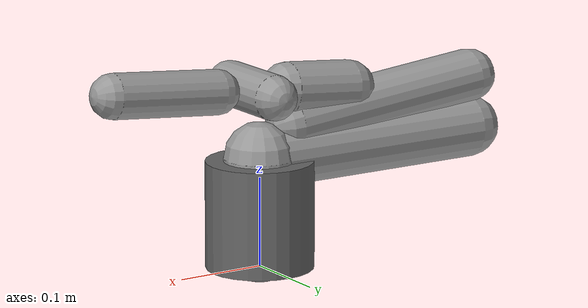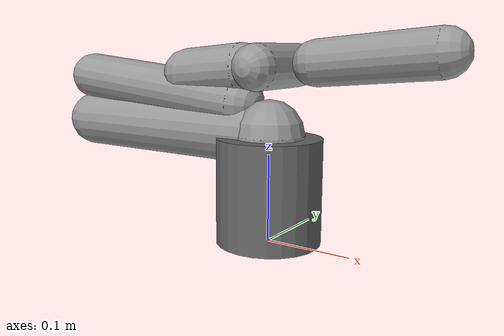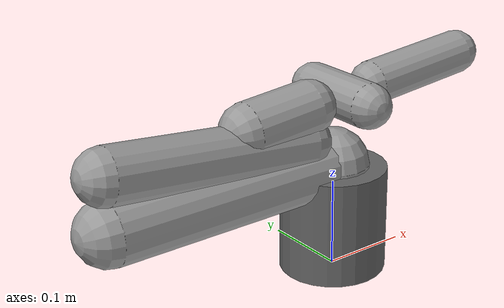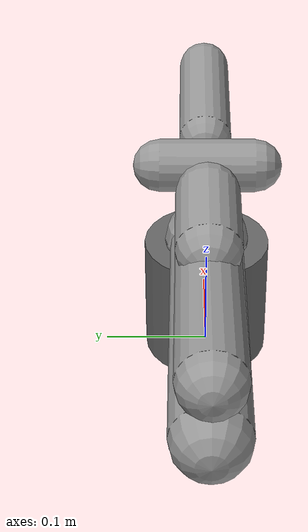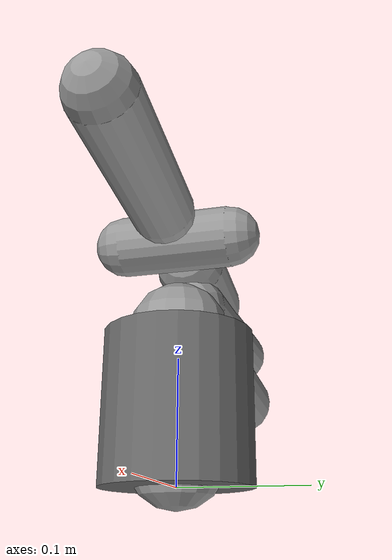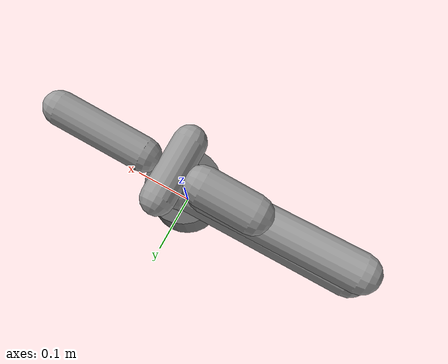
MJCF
<mujoco model="piper_description">
  <compiler angle="radian"/>

  <option integrator="implicitfast"/>

  <default>
    <default class="piper">
      <joint frictionloss="0.3" armature="0.005"/>
      <position inheritrange="1" forcerange="-100 100"/>
      <geom type="capsule" rgba="0.6 0.6 0.6 1"/>
    </default>
  </default>

  <worldbody>
    <light name="spotlight" mode="targetbodycom" target="link6" pos="0 0 2"/>
    <body name="base_link" childclass="piper" gravcomp="1">
      <inertial pos="0 0 0.04" mass="0.16" diaginertia="0.0002 0.0002 0.0002"/>
      <geom type="cylinder" size="0.06 0.06" pos="0 0 0.06" rgba="0.4 0.4 0.4 1"/>
      <body name="link1" pos="0 0 0.123" quat="0.707105 0 0 -0.707108" gravcomp="1">
        <inertial pos="0 0 -0.01" mass="0.1" diaginertia="0.00008 0.00008 0.00008"/>
        <joint name="joint1" axis="0 0 1" range="-2.618 2.618"/>
        <geom size="0.04 0.05" pos="0 0 -0.05"/>
        <body name="link2" quat="0.499998 0.5 -0.500002 -0.5" gravcomp="1">
          <inertial pos="0.15 0 0" mass="0.29" diaginertia="0.001 0.001 0.0001"/>
          <joint name="joint2" axis="0 0 1" range="0 3.14"/>
          <geom size="0.035 0.14" pos="0.14 0 0" quat="0.707105 0 0.707108 0"/>
          <body name="link3" pos="0.28358 0.028726 0" quat="0.998726 0 0 0.0504536" gravcomp="1">
            <inertial pos="-0.1 0.035 0" mass="0.29" diaginertia="0.0002 0.0002 0.0001"/>
            <joint name="joint3" axis="0 0 1" range="-2.697 0"/>
            <geom size="0.03 0.12" pos="-0.12 0.03 0" quat="0.707105 0 0.707108 0"/>
            <body name="link4" pos="-0.24221 0.068514 0" quat="0.544767 -0.544769 -0.450809 0.450808" gravcomp="1">
              <inertial pos="0 0 -0.005" mass="0.13" diaginertia="0.00004 0.00004 0.00004"/>
              <joint name="joint4" axis="0 0 1" range="-1.832 1.832"/>
              <geom size="0.03 0.04" pos="0 0 -0.04"/>
              <body name="link5" quat="0.707105 0.707108 0 0" gravcomp="1">
                <inertial pos="0 0.057 0" mass="0.14" diaginertia="0.001 0.001 0.001"/>
                <joint name="joint5" axis="0 0 1" range="-1.22 1.22"/>
                <geom size="0.025 0.045" pos="0 0.045 0" quat="0.707105 0 0 0.707108"/>
                <body name="link6" pos="0 0.091 0.0014165" quat="0 0 -0.707105 -0.707108" gravcomp="1">
                  <inertial pos="0 0 0.07" mass="0.15" diaginertia="0.001 0.001 0.001"/>
                  <joint name="joint6" axis="0 0 1" range="-3.14 3.14"/>
                  <geom size="0.025 0.065" pos="0 0 0.065"/>
                  <site name="ee_site" pos="0 0 0.135" size="0.01"/>
                </body>
              </body>
            </body>
          </body>
        </body>
      </body>
    </body>
  </worldbody>

  <contact>
    <exclude body1="base_link" body2="link1"/>
  </contact>

  <actuator>
    <position name="joint1" joint="joint1" class="piper" kp="80" kv="5"/>
    <position name="joint2" joint="joint2" class="piper" kp="80" kv="5"/>
    <position name="joint3" joint="joint3" class="piper" kp="80" kv="5"/>
    <position name="joint4" joint="joint4" class="piper" kp="40" kv="5"/>
    <position name="joint5" joint="joint5" class="piper" kp="10" kv="1.5"/>
    <position name="joint6" joint="joint6" class="piper" kp="10" kv="1.5"/>
  </actuator>

  <keyframe>
    <key name="home" qpos="0 1.57 -1.3485 0 0 0" ctrl="0 1.57 -1.3485 0 0 0"/>
  </keyframe>
</mujoco>
